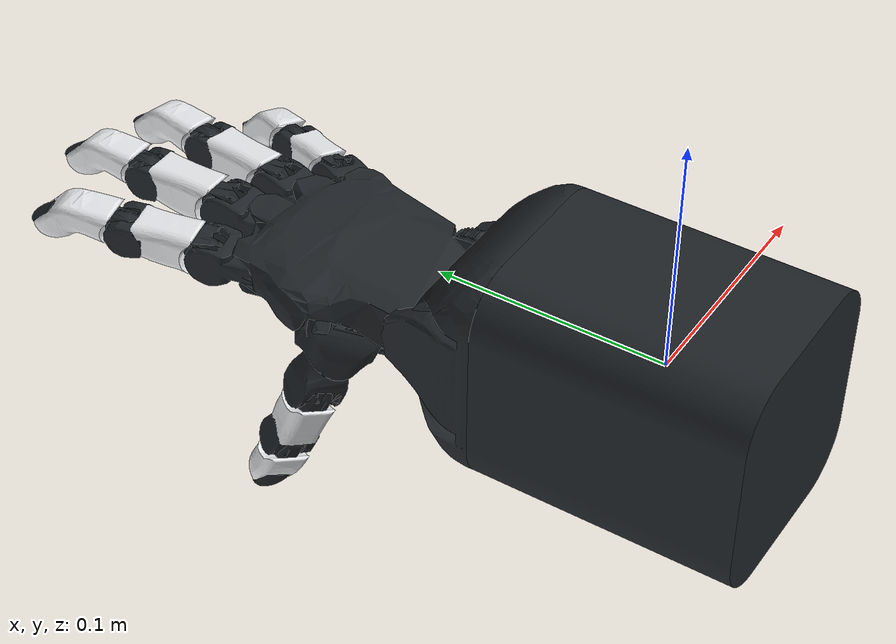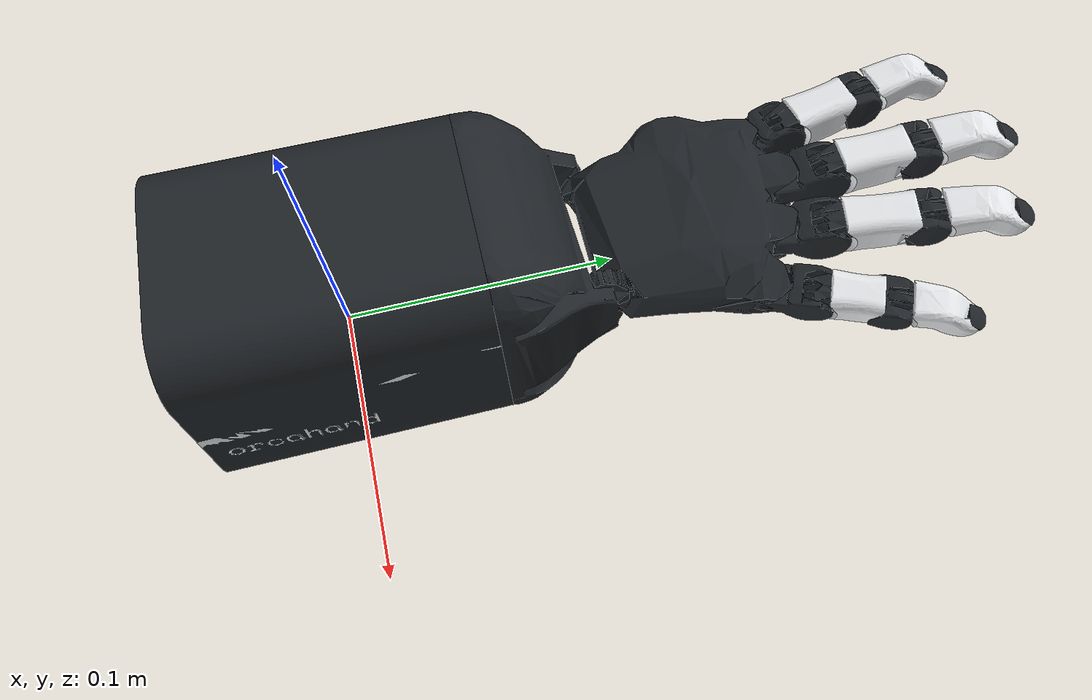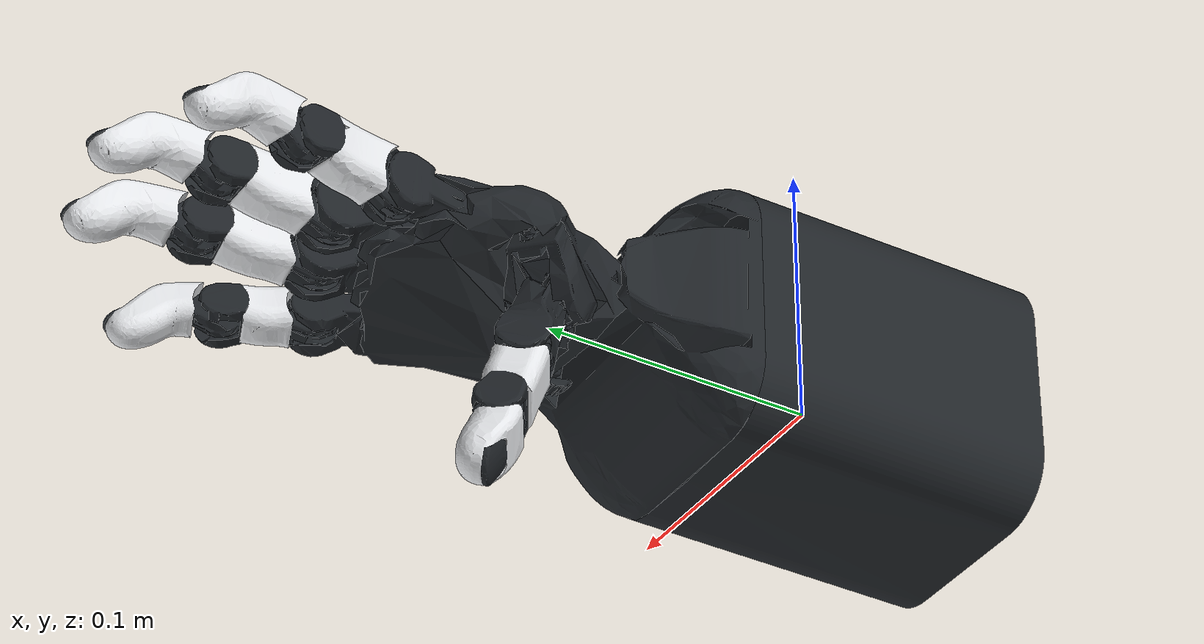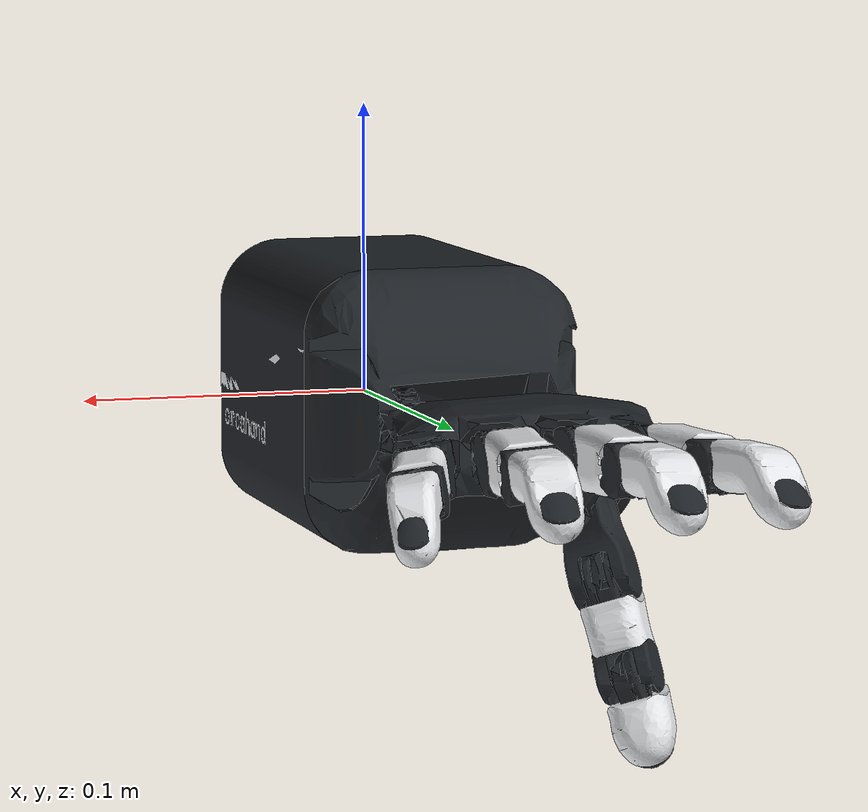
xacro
<?xml version="1.0"?>
<!-- Standalone hand (for viewing / testing the hand driver without the arm). -->
<robot xmlns:xacro="http://wiki.ros.org/xacro" name="orcahand">
  <xacro:arg name="side" default="right"/>
  <xacro:arg name="prefix" default="hand_"/>
  <xacro:include filename="$(find orcahand_ros_description)/urdf/orcahand.xacro"/>
  <link name="world"/>
  <xacro:orcahand side="$(arg side)" prefix="$(arg prefix)" parent="world">
    <origin xyz="0 0 0" rpy="0 0 0"/>
  </xacro:orcahand>
</robot>

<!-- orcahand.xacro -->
<robot xmlns:xacro="http://wiki.ros.org/xacro">
  <xacro:include filename="$(find orcahand_ros_description)/urdf/orcahand_right_macro.xacro"/>
  <xacro:include filename="$(find orcahand_ros_description)/urdf/orcahand_left_macro.xacro"/>

  <xacro:macro name="orcahand" params="side:=right prefix:=hand_ parent *origin">
    <xacro:if value="${side == 'right'}">
      <xacro:orcahand_right prefix="${prefix}" parent="${parent}">
        <xacro:insert_block name="origin"/>
      </xacro:orcahand_right>
    </xacro:if>
    <xacro:if value="${side == 'left'}">
      <xacro:orcahand_left prefix="${prefix}" parent="${parent}">
        <xacro:insert_block name="origin"/>
      </xacro:orcahand_left>
    </xacro:if>
  </xacro:macro>
</robot>

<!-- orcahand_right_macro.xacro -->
<!-- GENERATED by tools/build_from_orca_ui.py - do not edit -->
<!-- 2026-10-23: *_abd axes flipped (0 0 1 -> 0 0 -1) to match orca_core v2_kinematics.yaml sign=-1
     (positive abduction = toward the pinky). The generator now applies this itself. -->
<robot xmlns:xacro="http://wiki.ros.org/xacro">
  <xacro:macro name="orcahand_right" params="prefix parent *origin">
    <joint name="${prefix}mount_joint" type="fixed">
      <parent link="${parent}"/>
      <child link="${prefix}forearm"/>
      <xacro:insert_block name="origin"/>
    </joint>
    <link name="${prefix}forearm">
      <visual>
        <origin xyz="0 0 0" rpy="0 0 0"/>
        <geometry><mesh filename="package://orcahand_ros_description/meshes/right/visual/link_forearm.dae"/></geometry>
      </visual>
      <collision>
        <origin xyz="0 0 0" rpy="0 0 0"/>
        <geometry><mesh filename="package://orcahand_ros_description/meshes/right/collision/link_forearm.stl"/></geometry>
      </collision>
    </link>
    <link name="${prefix}tower">
      <visual>
        <origin xyz="0 0 0" rpy="0 0 0"/>
        <geometry><mesh filename="package://orcahand_ros_description/meshes/right/visual/link_tower.dae"/></geometry>
      </visual>
      <collision>
        <origin xyz="0 0 0" rpy="0 0 0"/>
        <geometry><mesh filename="package://orcahand_ros_description/meshes/right/collision/link_tower.stl"/></geometry>
      </collision>
    </link>
    <link name="${prefix}carpals">
      <visual>
        <origin xyz="-0.005 -0.00187707806 0.0495000007" rpy="0 0 0"/>
        <geometry><mesh filename="package://orcahand_ros_description/meshes/right/visual/link_carpals.dae"/></geometry>
      </visual>
      <collision>
        <origin xyz="-0.005 -0.00187707806 0.0495000007" rpy="0 0 0"/>
        <geometry><mesh filename="package://orcahand_ros_description/meshes/right/collision/link_carpals.stl"/></geometry>
      </collision>
    </link>
    <link name="${prefix}pinky_ap">
      <visual>
        <origin xyz="-0.01775 0 -0.001" rpy="0 0 0"/>
        <geometry><mesh filename="package://orcahand_ros_description/meshes/right/visual/link_pinky_ap.dae"/></geometry>
      </visual>
      <collision>
        <origin xyz="-0.01775 0 -0.001" rpy="0 0 0"/>
        <geometry><mesh filename="package://orcahand_ros_description/meshes/right/collision/link_pinky_ap.stl"/></geometry>
      </collision>
    </link>
    <link name="${prefix}pinky_pp">
      <visual>
        <origin xyz="0 0 0" rpy="0 0 0"/>
        <geometry><mesh filename="package://orcahand_ros_description/meshes/right/visual/link_pinky_pp.dae"/></geometry>
      </visual>
      <collision>
        <origin xyz="0 0 0" rpy="0 0 0"/>
        <geometry><mesh filename="package://orcahand_ros_description/meshes/right/collision/link_pinky_pp.stl"/></geometry>
      </collision>
    </link>
    <link name="${prefix}pinky_fingertip_assembly">
      <visual>
        <origin xyz="0 0 0" rpy="0 0 0"/>
        <geometry><mesh filename="package://orcahand_ros_description/meshes/right/visual/link_pinky_fingertip_assembly.dae"/></geometry>
      </visual>
      <collision>
        <origin xyz="0 0 0" rpy="0 0 0"/>
        <geometry><mesh filename="package://orcahand_ros_description/meshes/right/collision/link_pinky_fingertip_assembly.stl"/></geometry>
      </collision>
    </link>
    <link name="${prefix}ring_ap">
      <visual>
        <origin xyz="-0.01925 0 -0.001" rpy="0 0 0"/>
        <geometry><mesh filename="package://orcahand_ros_description/meshes/right/visual/link_middle_ap.dae"/></geometry>
      </visual>
      <collision>
        <origin xyz="-0.01925 0 -0.001" rpy="0 0 0"/>
        <geometry><mesh filename="package://orcahand_ros_description/meshes/right/collision/link_middle_ap.stl"/></geometry>
      </collision>
    </link>
    <link name="${prefix}ring_pp">
      <visual>
        <origin xyz="0 0 0" rpy="0 0 0"/>
        <geometry><mesh filename="package://orcahand_ros_description/meshes/right/visual/link_middle_pp.dae"/></geometry>
      </visual>
      <collision>
        <origin xyz="0 0 0" rpy="0 0 0"/>
        <geometry><mesh filename="package://orcahand_ros_description/meshes/right/collision/link_middle_pp.stl"/></geometry>
      </collision>
    </link>
    <link name="${prefix}ring_fingertip_assembly">
      <visual>
        <origin xyz="0 0 0" rpy="0 0 0"/>
        <geometry><mesh filename="package://orcahand_ros_description/meshes/right/visual/link_middle_fingertip_assembly.dae"/></geometry>
      </visual>
      <collision>
        <origin xyz="0 0 0" rpy="0 0 0"/>
        <geometry><mesh filename="package://orcahand_ros_description/meshes/right/collision/link_middle_fingertip_assembly.stl"/></geometry>
      </collision>
    </link>
    <link name="${prefix}middle_ap">
      <visual>
        <origin xyz="-0.01925 0 -0.001" rpy="0 0 0"/>
        <geometry><mesh filename="package://orcahand_ros_description/meshes/right/visual/link_middle_ap.dae"/></geometry>
      </visual>
      <collision>
        <origin xyz="-0.01925 0 -0.001" rpy="0 0 0"/>
        <geometry><mesh filename="package://orcahand_ros_description/meshes/right/collision/link_middle_ap.stl"/></geometry>
      </collision>
    </link>
    <link name="${prefix}middle_pp">
      <visual>
        <origin xyz="0 0 0" rpy="0 0 0"/>
        <geometry><mesh filename="package://orcahand_ros_description/meshes/right/visual/link_middle_pp.dae"/></geometry>
      </visual>
      <collision>
        <origin xyz="0 0 0" rpy="0 0 0"/>
        <geometry><mesh filename="package://orcahand_ros_description/meshes/right/collision/link_middle_pp.stl"/></geometry>
      </collision>
    </link>
    <link name="${prefix}middle_fingertip_assembly">
      <visual>
        <origin xyz="0 0 0" rpy="0 0 0"/>
        <geometry><mesh filename="package://orcahand_ros_description/meshes/right/visual/link_middle_fingertip_assembly.dae"/></geometry>
      </visual>
      <collision>
        <origin xyz="0 0 0" rpy="0 0 0"/>
        <geometry><mesh filename="package://orcahand_ros_description/meshes/right/collision/link_middle_fingertip_assembly.stl"/></geometry>
      </collision>
    </link>
    <link name="${prefix}index_ap">
      <visual>
        <origin xyz="-0.01875 0 -0.001" rpy="0 0 0"/>
        <geometry><mesh filename="package://orcahand_ros_description/meshes/right/visual/link_index_ap.dae"/></geometry>
      </visual>
      <collision>
        <origin xyz="-0.01875 0 -0.001" rpy="0 0 0"/>
        <geometry><mesh filename="package://orcahand_ros_description/meshes/right/collision/link_index_ap.stl"/></geometry>
      </collision>
    </link>
    <link name="${prefix}index_pp">
      <visual>
        <origin xyz="0 0 0" rpy="0 0 0"/>
        <geometry><mesh filename="package://orcahand_ros_description/meshes/right/visual/link_index_pp.dae"/></geometry>
      </visual>
      <collision>
        <origin xyz="0 0 0" rpy="0 0 0"/>
        <geometry><mesh filename="package://orcahand_ros_description/meshes/right/collision/link_index_pp.stl"/></geometry>
      </collision>
    </link>
    <link name="${prefix}index_fingertip_assembly">
      <visual>
        <origin xyz="0 0 0" rpy="0 0 0"/>
        <geometry><mesh filename="package://orcahand_ros_description/meshes/right/visual/link_index_fingertip_assembly.dae"/></geometry>
      </visual>
      <collision>
        <origin xyz="0 0 0" rpy="0 0 0"/>
        <geometry><mesh filename="package://orcahand_ros_description/meshes/right/collision/link_index_fingertip_assembly.stl"/></geometry>
      </collision>
    </link>
    <link name="${prefix}thumb_tp">
      <visual>
        <origin xyz="0 0 -0.00385" rpy="0 0 0"/>
        <geometry><mesh filename="package://orcahand_ros_description/meshes/right/visual/link_thumb_tp.dae"/></geometry>
      </visual>
      <collision>
        <origin xyz="0 0 -0.00385" rpy="0 0 0"/>
        <geometry><mesh filename="package://orcahand_ros_description/meshes/right/collision/link_thumb_tp.stl"/></geometry>
      </collision>
    </link>
    <link name="${prefix}thumb_ap">
      <visual>
        <origin xyz="-0.028 0 0" rpy="0 0 0"/>
        <geometry><mesh filename="package://orcahand_ros_description/meshes/right/visual/link_thumb_ap.dae"/></geometry>
      </visual>
      <collision>
        <origin xyz="-0.028 0 0" rpy="0 0 0"/>
        <geometry><mesh filename="package://orcahand_ros_description/meshes/right/collision/link_thumb_ap.stl"/></geometry>
      </collision>
    </link>
    <link name="${prefix}thumb_pp">
      <visual>
        <origin xyz="0 0 0" rpy="0 0 0"/>
        <geometry><mesh filename="package://orcahand_ros_description/meshes/right/visual/link_thumb_pp.dae"/></geometry>
      </visual>
      <collision>
        <origin xyz="0 0 0" rpy="0 0 0"/>
        <geometry><mesh filename="package://orcahand_ros_description/meshes/right/collision/link_thumb_pp.stl"/></geometry>
      </collision>
    </link>
    <link name="${prefix}thumb_dp">
      <visual>
        <origin xyz="0 0 0" rpy="0 0 0"/>
        <geometry><mesh filename="package://orcahand_ros_description/meshes/right/visual/link_thumb_dp.dae"/></geometry>
      </visual>
      <collision>
        <origin xyz="0 0 0" rpy="0 0 0"/>
        <geometry><mesh filename="package://orcahand_ros_description/meshes/right/collision/link_thumb_dp.stl"/></geometry>
      </collision>
    </link>
    <link name="${prefix}thumb_fingertip"/>
    <link name="${prefix}index_fingertip"/>
    <link name="${prefix}middle_fingertip"/>
    <link name="${prefix}ring_fingertip"/>
    <link name="${prefix}pinky_fingertip"/>
    <joint name="${prefix}tower_fixed" type="fixed">
      <parent link="${prefix}forearm"/>
      <child link="${prefix}tower"/>
      <origin xyz="-0.01 0.0523 0" rpy="-1.57079633 1.57079633 0"/>
    </joint>
    <joint name="${prefix}wrist" type="revolute">
      <parent link="${prefix}tower"/>
      <child link="${prefix}carpals"/>
      <origin xyz="0 0 0.04" rpy="0 0 -1.57079633"/>
      <axis xyz="-1 0 0"/>
      <limit lower="-1.13446401" upper="0.610865238" effort="1.0" velocity="3.0"/>
    </joint>
    <joint name="${prefix}pinky_abd" type="revolute">
      <parent link="${prefix}carpals"/>
      <child link="${prefix}pinky_ap"/>
      <origin xyz="0.035641716 0.000689158686 0.0620542419" rpy="-1.52947357 1.20286221 -2.91198954"/>
      <axis xyz="0 0 -1"/>
      <limit lower="-0.523598776" upper="0.523598776" effort="1.0" velocity="3.0"/>
    </joint>
    <joint name="${prefix}pinky_mcp" type="revolute">
      <parent link="${prefix}pinky_ap"/>
      <child link="${prefix}pinky_pp"/>
      <origin xyz="-0.01775 0 -0.001" rpy="0 -1.57079633 0"/>
      <axis xyz="0 -1 0"/>
      <limit lower="-0.436332313" upper="1.74532925" effort="1.0" velocity="3.0"/>
    </joint>
    <joint name="${prefix}pinky_pip" type="revolute">
      <parent link="${prefix}pinky_pp"/>
      <child link="${prefix}pinky_fingertip_assembly"/>
      <origin xyz="0.001 0 0.031" rpy="0 0 0"/>
      <axis xyz="0 -1 0"/>
      <limit lower="-0.261799388" upper="1.8675023" effort="1.0" velocity="3.0"/>
    </joint>
    <joint name="${prefix}ring_abd" type="revolute">
      <parent link="${prefix}carpals"/>
      <child link="${prefix}ring_ap"/>
      <origin xyz="0.0153077221 -0.00321836467 0.071304797" rpy="-1.57079633 1.42506133 -3.05432619"/>
      <axis xyz="0 0 -1"/>
      <limit lower="-0.471238898" upper="0.471238898" effort="1.0" velocity="3.0"/>
    </joint>
    <joint name="${prefix}ring_mcp" type="revolute">
      <parent link="${prefix}ring_ap"/>
      <child link="${prefix}ring_pp"/>
      <origin xyz="-0.0198669679 0 -0.001" rpy="0 -1.57079633 0"/>
      <axis xyz="0 -1 0"/>
      <limit lower="-0.436332313" upper="1.74532925" effort="1.0" velocity="3.0"/>
    </joint>
    <joint name="${prefix}ring_pip" type="revolute">
      <parent link="${prefix}ring_pp"/>
      <child link="${prefix}ring_fingertip_assembly"/>
      <origin xyz="0.002 0 0.04" rpy="0 0 0"/>
      <axis xyz="0 -1 0"/>
      <limit lower="-0.261799388" upper="1.8675023" effort="1.0" velocity="3.0"/>
    </joint>
    <joint name="${prefix}middle_abd" type="revolute">
      <parent link="${prefix}carpals"/>
      <child link="${prefix}middle_ap"/>
      <origin xyz="-0.00570633373 -0.00402340407 0.0785018934" rpy="1.57079633 1.56817833 0"/>
      <axis xyz="0 0 -1"/>
      <limit lower="-0.471238898" upper="0.471238898" effort="1.0" velocity="3.0"/>
    </joint>
    <joint name="${prefix}middle_mcp" type="revolute">
      <parent link="${prefix}middle_ap"/>
      <child link="${prefix}middle_pp"/>
      <origin xyz="-0.0198669679 0 -0.001" rpy="0 -1.57079633 0"/>
      <axis xyz="0 -1 0"/>
      <limit lower="-0.436332313" upper="1.74532925" effort="1.0" velocity="3.0"/>
    </joint>
    <joint name="${prefix}middle_pip" type="revolute">
      <parent link="${prefix}middle_pp"/>
      <child link="${prefix}middle_fingertip_assembly"/>
      <origin xyz="0.002 0 0.04" rpy="0 0 0"/>
      <axis xyz="0 -1 0"/>
      <limit lower="-0.261799388" upper="1.8675023" effort="1.0" velocity="3.0"/>
    </joint>
    <joint name="${prefix}index_abd" type="revolute">
      <parent link="${prefix}carpals"/>
      <child link="${prefix}index_ap"/>
      <origin xyz="-0.027240979 -0.0022069668 0.0694068027" rpy="1.65385681 1.38734965 -0.0042742186"/>
      <axis xyz="0 0 -1"/>
      <limit lower="-0.436332313" upper="0.523598776" effort="1.0" velocity="3.0"/>
    </joint>
    <joint name="${prefix}index_mcp" type="revolute">
      <parent link="${prefix}index_ap"/>
      <child link="${prefix}index_pp"/>
      <origin xyz="-0.0191509682 0 -0.001" rpy="0 -1.57079633 0"/>
      <axis xyz="0 -1 0"/>
      <limit lower="-0.436332313" upper="1.74532925" effort="1.0" velocity="3.0"/>
    </joint>
    <joint name="${prefix}index_pip" type="revolute">
      <parent link="${prefix}index_pp"/>
      <child link="${prefix}index_fingertip_assembly"/>
      <origin xyz="0.0015 0 0.037" rpy="0 0 0"/>
      <axis xyz="0 -1 0"/>
      <limit lower="-0.261799388" upper="1.8675023" effort="1.0" velocity="3.0"/>
    </joint>
    <joint name="${prefix}thumb_cmc" type="revolute">
      <parent link="${prefix}carpals"/>
      <child link="${prefix}thumb_tp"/>
      <origin xyz="-0.0283987191 0.0109971809 0.0305895335" rpy="0.66149514 0.386056856 -1.4328677"/>
      <axis xyz="0 0 -1"/>
      <limit lower="-0.785398163" upper="0.575958653" effort="1.0" velocity="3.0"/>
    </joint>
    <joint name="${prefix}thumb_abd" type="revolute">
      <parent link="${prefix}thumb_tp"/>
      <child link="${prefix}thumb_ap"/>
      <origin xyz="-0.008 0 -0.00385" rpy="-1.22173048 0 0"/>
      <axis xyz="0 0.342020143 0.939692621"/>
      <limit lower="-0.314159265" upper="0.959931089" effort="1.0" velocity="3.0"/>
    </joint>
    <joint name="${prefix}thumb_mcp" type="revolute">
      <parent link="${prefix}thumb_ap"/>
      <child link="${prefix}thumb_pp"/>
      <origin xyz="-0.028 0 0" rpy="-3.14159265 1.57079633 0"/>
      <axis xyz="0 -1 0"/>
      <limit lower="-0.436332313" upper="1.74532925" effort="1.0" velocity="3.0"/>
    </joint>
    <joint name="${prefix}thumb_dip" type="revolute">
      <parent link="${prefix}thumb_pp"/>
      <child link="${prefix}thumb_dp"/>
      <origin xyz="0.001 0 0.032" rpy="0 0 0"/>
      <axis xyz="0 -1 0"/>
      <limit lower="-0.261799388" upper="1.8675023" effort="1.0" velocity="3.0"/>
    </joint>
    <joint name="${prefix}thumb_fingertip_fixed" type="fixed">
      <parent link="${prefix}thumb_dp"/>
      <child link="${prefix}thumb_fingertip"/>
      <origin xyz="0.001017 0 0.03" rpy="0 0 0"/>
    </joint>
    <joint name="${prefix}index_fingertip_fixed" type="fixed">
      <parent link="${prefix}index_fingertip_assembly"/>
      <child link="${prefix}index_fingertip"/>
      <origin xyz="-0.001718 0 0.0444" rpy="0 0 0"/>
    </joint>
    <joint name="${prefix}middle_fingertip_fixed" type="fixed">
      <parent link="${prefix}middle_fingertip_assembly"/>
      <child link="${prefix}middle_fingertip"/>
      <origin xyz="-0.001718 0 0.0444" rpy="0 0 0"/>
    </joint>
    <joint name="${prefix}ring_fingertip_fixed" type="fixed">
      <parent link="${prefix}ring_fingertip_assembly"/>
      <child link="${prefix}ring_fingertip"/>
      <origin xyz="-0.001718 0 0.0444" rpy="0 0 0"/>
    </joint>
    <joint name="${prefix}pinky_fingertip_fixed" type="fixed">
      <parent link="${prefix}pinky_fingertip_assembly"/>
      <child link="${prefix}pinky_fingertip"/>
      <origin xyz="-0.002225 0 0.0374" rpy="0 0 0"/>
    </joint>
  </xacro:macro>
</robot>
